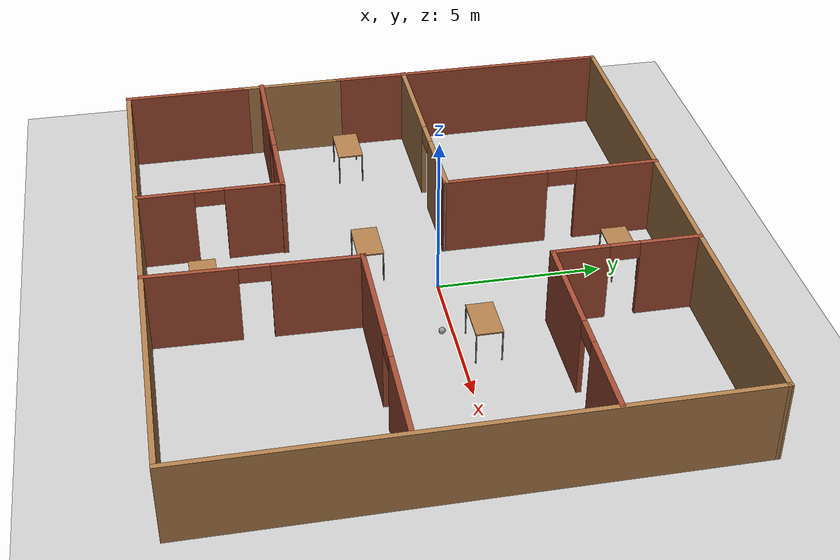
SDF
<sdf version="1.6">
 <world name="default">
  <light name="sun" type="directional">
   <pose>0 0 10 0 -0 0</pose>
   <diffuse>0.8 0.8 0.8 1</diffuse>
   <specular>0.1 0.1 0.1 1</specular>
   <attenuation>
    <range>1000</range>
    <constant>0.9</constant>
    <linear>0.01</linear>
    <quadratic>0.001</quadratic>
   </attenuation>
   <direction>-0.5 0.5 -1</direction>
  </light>
  <model name="ground_plane">
   <static>1</static>
   <link name="link">
    <collision name="collision">
     <geometry><plane><normal>0 0 1</normal><size>100 100</size></plane></geometry>
     <surface><friction><ode><mu>100</mu><mu2>50</mu2></ode></friction></surface>
    </collision>
    <visual name="visual">
     <cast_shadows>0</cast_shadows>
     <geometry><plane><normal>0 0 1</normal><size>100 100</size></plane></geometry>
     <material>
      <script><uri>file://media/materials/scripts/gazebo.material</uri><name>Gazebo/Grey</name></script>
     </material>
    </visual>
   </link>
  </model>
  <gravity>0 0 -9.8</gravity>
  <magnetic_field>6e-06 2.3e-05 -4.2e-05</magnetic_field>
  <atmosphere type="adiabatic"/>
  <physics name="default_physics" default="0" type="ode">
   <max_step_size>0.001</max_step_size>
   <real_time_factor>1</real_time_factor>
   <real_time_update_rate>1000</real_time_update_rate>
  </physics>
  <scene><ambient>0.4 0.4 0.4 1</ambient><background>0.7 0.7 0.7 1</background><shadows>1</shadows></scene>
  <spherical_coordinates>
   <surface_model>EARTH_WGS84</surface_model>
   <latitude_deg>0</latitude_deg>
   <longitude_deg>0</longitude_deg>
   <elevation>0</elevation>
   <heading_deg>0</heading_deg>
  </spherical_coordinates>
  <model name="my_building">
   <pose>0.05994 -0.71489 0 0 -0 0</pose>
   <link name="Wall_1">
    <collision name="Wall_1_Collision">
     <geometry><box><size>3.25 0.15 2.5</size></box></geometry>
     <pose>0 0 1.25 0 -0 0</pose>
    </collision>
    <visual name="Wall_1_Visual">
     <pose>0 0 1.25 0 -0 0</pose>
     <geometry><box><size>3.25 0.15 2.5</size></box></geometry>
     <material>
      <script><uri>file://media/materials/scripts/gazebo.material</uri><name>Gazebo/Wood</name></script>
      <ambient>1 1 1 1</ambient>
     </material>
    </visual>
    <pose>-8.76994 -2.52511 0 0 0 -1.5708</pose>
   </link>
   <link name="Wall_10">
    <pose>-1.91645 4.60169 0 0 -0 1.5708</pose>
    <visual name="Wall_10_Visual_0">
     <pose>-1.75539 0 1.25 0 -0 0</pose>
     <geometry><box><size>3.26293 0.15 2.5</size></box></geometry>
     <material>
      <script><uri>file://media/materials/scripts/gazebo.material</uri><name>Gazebo/Bricks</name></script>
      <ambient>1 1 1 1</ambient>
     </material>
    </visual>
    <collision name="Wall_10_Collision_0">
     <geometry><box><size>3.26293 0.15 2.5</size></box></geometry>
     <pose>-1.75539 0 1.25 0 -0 0</pose>
    </collision>
    <visual name="Wall_10_Visual_1">
     <pose>2.08147 0 1.25 0 -0 0</pose>
     <geometry><box><size>2.61077 0.15 2.5</size></box></geometry>
     <material>
      <script><uri>file://media/materials/scripts/gazebo.material</uri><name>Gazebo/Bricks</name></script>
      <ambient>1 1 1 1</ambient>
     </material>
    </visual>
    <collision name="Wall_10_Collision_1">
     <geometry><box><size>2.61077 0.15 2.5</size></box></geometry>
     <pose>2.08147 0 1.25 0 -0 0</pose>
    </collision>
    <visual name="Wall_10_Visual_2">
     <pose>0.326079 0 2.25 0 -0 0</pose>
     <geometry><box><size>0.9 0.15 0.5</size></box></geometry>
     <material>
      <script><uri>file://media/materials/scripts/gazebo.material</uri><name>Gazebo/Bricks</name></script>
      <ambient>1 1 1 1</ambient>
     </material>
    </visual>
    <collision name="Wall_10_Collision_2">
     <geometry><box><size>0.9 0.15 0.5</size></box></geometry>
     <pose>0.326079 0 2.25 0 -0 0</pose>
    </collision>
   </link>
   <link name="Wall_12">
    <pose>2.18846 5.72608 0 0 0 -1.5708</pose>
    <visual name="Wall_12_Visual_0">
     <pose>-1.31814 0 1.25 0 -0 0</pose>
     <geometry><box><size>1.86373 0.15 2.5</size></box></geometry>
     <material>
      <script><uri>file://media/materials/scripts/gazebo.material</uri><name>Gazebo/Bricks</name></script>
      <ambient>1 1 1 1</ambient>
     </material>
    </visual>
    <collision name="Wall_12_Collision_0">
     <geometry><box><size>1.86373 0.15 2.5</size></box></geometry>
     <pose>-1.31814 0 1.25 0 -0 0</pose>
    </collision>
    <visual name="Wall_12_Visual_1">
     <pose>1.38186 0 1.25 0 -0 0</pose>
     <geometry><box><size>1.73627 0.15 2.5</size></box></geometry>
     <material>
      <script><uri>file://media/materials/scripts/gazebo.material</uri><name>Gazebo/Bricks</name></script>
      <ambient>1 1 1 1</ambient>
     </material>
    </visual>
    <collision name="Wall_12_Collision_1">
     <geometry><box><size>1.73627 0.15 2.5</size></box></geometry>
     <pose>1.38186 0 1.25 0 -0 0</pose>
    </collision>
    <visual name="Wall_12_Visual_2">
     <pose>0.063728 0 2.25 0 -0 0</pose>
     <geometry><box><size>0.9 0.15 0.5</size></box></geometry>
     <material>
      <script><uri>file://media/materials/scripts/gazebo.material</uri><name>Gazebo/Bricks</name></script>
      <ambient>1 1 1 1</ambient>
     </material>
    </visual>
    <collision name="Wall_12_Collision_2">
     <geometry><box><size>0.9 0.15 0.5</size></box></geometry>
     <pose>0.063728 0 2.25 0 -0 0</pose>
    </collision>
   </link>
   <link name="Wall_13">
    <pose>5.48846 3.55108 0 0 -0 0</pose>
    <visual name="Wall_13_Visual_0">
     <pose>-1.74353 0 1.25 0 -0 0</pose>
     <geometry><box><size>3.26293 0.15 2.5</size></box></geometry>
     <material>
      <script><uri>file://media/materials/scripts/gazebo.material</uri><name>Gazebo/Bricks</name></script>
      <ambient>1 1 1 1</ambient>
     </material>
    </visual>
    <collision name="Wall_13_Collision_0">
     <geometry><box><size>3.26293 0.15 2.5</size></box></geometry>
     <pose>-1.74353 0 1.25 0 -0 0</pose>
    </collision>
    <visual name="Wall_13_Visual_1">
     <pose>2.08147 0 1.25 0 -0 0</pose>
     <geometry><box><size>2.58707 0.15 2.5</size></box></geometry>
     <material>
      <script><uri>file://media/materials/scripts/gazebo.material</uri><name>Gazebo/Bricks</name></script>
      <ambient>1 1 1 1</ambient>
     </material>
    </visual>
    <collision name="Wall_13_Collision_1">
     <geometry><box><size>2.58707 0.15 2.5</size></box></geometry>
     <pose>2.08147 0 1.25 0 -0 0</pose>
    </collision>
    <visual name="Wall_13_Visual_2">
     <pose>0.337933 0 2.25 0 -0 0</pose>
     <geometry><box><size>0.9 0.15 0.5</size></box></geometry>
     <material>
      <script><uri>file://media/materials/scripts/gazebo.material</uri><name>Gazebo/Bricks</name></script>
      <ambient>1 1 1 1</ambient>
     </material>
    </visual>
    <collision name="Wall_13_Collision_2">
     <geometry><box><size>0.9 0.15 0.5</size></box></geometry>
     <pose>0.337933 0 2.25 0 -0 0</pose>
    </collision>
   </link>
   <link name="Wall_15">
    <pose>-5.78798 -3.53742 0 0 -0 0</pose>
    <visual name="Wall_15_Visual_0">
     <pose>-1.62574 0 1.25 0 -0 0</pose>
     <geometry><box><size>2.98309 0.15 2.5</size></box></geometry>
     <material>
      <script><uri>file://media/materials/scripts/gazebo.material</uri><name>Gazebo/Bricks</name></script>
      <ambient>1 1 1 1</ambient>
     </material>
    </visual>
    <collision name="Wall_15_Collision_0">
     <geometry><box><size>2.98309 0.15 2.5</size></box></geometry>
     <pose>-1.62574 0 1.25 0 -0 0</pose>
    </collision>
    <visual name="Wall_15_Visual_1">
     <pose>1.94155 0 1.25 0 -0 0</pose>
     <geometry><box><size>2.35149 0.15 2.5</size></box></geometry>
     <material>
      <script><uri>file://media/materials/scripts/gazebo.material</uri><name>Gazebo/Bricks</name></script>
      <ambient>1 1 1 1</ambient>
     </material>
    </visual>
    <collision name="Wall_15_Collision_1">
     <geometry><box><size>2.35149 0.15 2.5</size></box></geometry>
     <pose>1.94155 0 1.25 0 -0 0</pose>
    </collision>
    <visual name="Wall_15_Visual_2">
     <pose>0.315801 0 2.25 0 -0 0</pose>
     <geometry><box><size>0.9 0.15 0.5</size></box></geometry>
     <material>
      <script><uri>file://media/materials/scripts/gazebo.material</uri><name>Gazebo/Bricks</name></script>
      <ambient>1 1 1 1</ambient>
     </material>
    </visual>
    <collision name="Wall_15_Collision_2">
     <geometry><box><size>0.9 0.15 0.5</size></box></geometry>
     <pose>0.315801 0 2.25 0 -0 0</pose>
    </collision>
   </link>
   <link name="Wall_16">
    <pose>-2.78067 -5.71242 0 0 0 -1.5708</pose>
    <visual name="Wall_16_Visual_0">
     <pose>-1.33563 0 1.25 0 -0 0</pose>
     <geometry><box><size>1.82875 0.15 2.5</size></box></geometry>
     <material>
      <script><uri>file://media/materials/scripts/gazebo.material</uri><name>Gazebo/Bricks</name></script>
      <ambient>1 1 1 1</ambient>
     </material>
    </visual>
    <collision name="Wall_16_Collision_0">
     <geometry><box><size>1.82875 0.15 2.5</size></box></geometry>
     <pose>-1.33563 0 1.25 0 -0 0</pose>
    </collision>
    <visual name="Wall_16_Visual_1">
     <pose>1.36437 0 1.25 0 -0 0</pose>
     <geometry><box><size>1.77125 0.15 2.5</size></box></geometry>
     <material>
      <script><uri>file://media/materials/scripts/gazebo.material</uri><name>Gazebo/Bricks</name></script>
      <ambient>1 1 1 1</ambient>
     </material>
    </visual>
    <collision name="Wall_16_Collision_1">
     <geometry><box><size>1.77125 0.15 2.5</size></box></geometry>
     <pose>1.36437 0 1.25 0 -0 0</pose>
    </collision>
    <visual name="Wall_16_Visual_2">
     <pose>0.028748 0 2.25 0 -0 0</pose>
     <geometry><box><size>0.9 0.15 0.5</size></box></geometry>
     <material>
      <script><uri>file://media/materials/scripts/gazebo.material</uri><name>Gazebo/Bricks</name></script>
      <ambient>1 1 1 1</ambient>
     </material>
    </visual>
    <collision name="Wall_16_Collision_2">
     <geometry><box><size>0.9 0.15 0.5</size></box></geometry>
     <pose>0.028748 0 2.25 0 -0 0</pose>
    </collision>
   </link>
   <link name="Wall_18">
    <pose>1.31396 -4.82289 0 0 -0 1.54814</pose>
    <visual name="Wall_18_Visual_0">
     <pose>-1.79453 0 1.25 0 -0 0</pose>
     <geometry><box><size>2.73664 0.15 2.5</size></box></geometry>
     <material>
      <script><uri>file://media/materials/scripts/gazebo.material</uri><name>Gazebo/Bricks</name></script>
      <ambient>1 1 1 1</ambient>
     </material>
    </visual>
    <collision name="Wall_18_Collision_0">
     <geometry><box><size>2.73664 0.15 2.5</size></box></geometry>
     <pose>-1.79453 0 1.25 0 -0 0</pose>
    </collision>
    <visual name="Wall_18_Visual_1">
     <pose>1.81832 0 1.25 0 -0 0</pose>
     <geometry><box><size>2.68905 0.15 2.5</size></box></geometry>
     <material>
      <script><uri>file://media/materials/scripts/gazebo.material</uri><name>Gazebo/Bricks</name></script>
      <ambient>1 1 1 1</ambient>
     </material>
    </visual>
    <collision name="Wall_18_Collision_1">
     <geometry><box><size>2.68905 0.15 2.5</size></box></geometry>
     <pose>1.81832 0 1.25 0 -0 0</pose>
    </collision>
    <visual name="Wall_18_Visual_2">
     <pose>0.023794 0 2.25 0 -0 0</pose>
     <geometry><box><size>0.9 0.15 0.5</size></box></geometry>
     <material>
      <script><uri>file://media/materials/scripts/gazebo.material</uri><name>Gazebo/Bricks</name></script>
      <ambient>1 1 1 1</ambient>
     </material>
    </visual>
    <collision name="Wall_18_Collision_2">
     <geometry><box><size>0.9 0.15 0.5</size></box></geometry>
     <pose>0.023794 0 2.25 0 -0 0</pose>
    </collision>
   </link>
   <link name="Wall_19">
    <pose>5.08619 -1.73583 0 0 -0 0</pose>
    <visual name="Wall_19_Visual_0">
     <pose>-1.95341 0 1.25 0 -0 0</pose>
     <geometry><box><size>3.71767 0.15 2.5</size></box></geometry>
     <material>
      <script><uri>file://media/materials/scripts/gazebo.material</uri><name>Gazebo/Bricks</name></script>
      <ambient>1 1 1 1</ambient>
     </material>
    </visual>
    <collision name="Wall_19_Collision_0">
     <geometry><box><size>3.71767 0.15 2.5</size></box></geometry>
     <pose>-1.95341 0 1.25 0 -0 0</pose>
    </collision>
    <visual name="Wall_19_Visual_1">
     <pose>2.30884 0 1.25 0 -0 0</pose>
     <geometry><box><size>3.00683 0.15 2.5</size></box></geometry>
     <material>
      <script><uri>file://media/materials/scripts/gazebo.material</uri><name>Gazebo/Bricks</name></script>
      <ambient>1 1 1 1</ambient>
     </material>
    </visual>
    <collision name="Wall_19_Collision_1">
     <geometry><box><size>3.00683 0.15 2.5</size></box></geometry>
     <pose>2.30884 0 1.25 0 -0 0</pose>
    </collision>
    <visual name="Wall_19_Visual_2">
     <pose>0.355423 0 2.25 0 -0 0</pose>
     <geometry><box><size>0.9 0.15 0.5</size></box></geometry>
     <material>
      <script><uri>file://media/materials/scripts/gazebo.material</uri><name>Gazebo/Bricks</name></script>
      <ambient>1 1 1 1</ambient>
     </material>
    </visual>
    <collision name="Wall_19_Collision_2">
     <geometry><box><size>0.9 0.15 0.5</size></box></geometry>
     <pose>0.355423 0 2.25 0 -0 0</pose>
    </collision>
   </link>
   <link name="Wall_3">
    <collision name="Wall_3_Collision">
     <geometry><box><size>4 0.15 2.5</size></box></geometry>
     <pose>0 0 1.25 0 -0 0</pose>
    </collision>
    <visual name="Wall_3_Visual">
     <pose>0 0 1.25 0 -0 0</pose>
     <geometry><box><size>4 0.15 2.5</size></box></geometry>
     <material>
      <script><uri>file://media/materials/scripts/gazebo.material</uri><name>Gazebo/Bricks</name></script>
      <ambient>1 1 1 1</ambient>
     </material>
    </visual>
    <pose>-8.76994 -6.00011 0 0 0 -1.5708</pose>
   </link>
   <link name="Wall_4">
    <collision name="Wall_4_Collision">
     <geometry><box><size>17.75 0.15 2.5</size></box></geometry>
     <pose>0 0 1.25 0 -0 0</pose>
    </collision>
    <visual name="Wall_4_Visual">
     <pose>0 0 1.25 0 -0 0</pose>
     <geometry><box><size>17.75 0.15 2.5</size></box></geometry>
     <material>
      <script><uri>file://media/materials/scripts/gazebo.material</uri><name>Gazebo/Wood</name></script>
      <ambient>1 1 1 1</ambient>
     </material>
    </visual>
    <pose>0.030064 -7.92511 0 0 -0 0</pose>
   </link>
   <link name="Wall_5">
    <collision name="Wall_5_Collision">
     <geometry><box><size>16 0.15 2.5</size></box></geometry>
     <pose>0 0 1.25 0 -0 0</pose>
    </collision>
    <visual name="Wall_5_Visual">
     <pose>0 0 1.25 0 -0 0</pose>
     <geometry><box><size>16 0.15 2.5</size></box></geometry>
     <material>
      <script><uri>file://media/materials/scripts/gazebo.material</uri><name>Gazebo/Wood</name></script>
      <ambient>1 1 1 1</ambient>
     </material>
    </visual>
    <pose>8.83006 -0.000106 0 0 -0 1.5708</pose>
   </link>
   <link name="Wall_6">
    <collision name="Wall_6_Collision">
     <geometry><box><size>17.7501 0.15 2.5</size></box></geometry>
     <pose>0 0 1.25 0 -0 0</pose>
    </collision>
    <visual name="Wall_6_Visual">
     <pose>0 0 1.25 0 -0 0</pose>
     <geometry><box><size>17.7501 0.15 2.5</size></box></geometry>
     <material>
      <script><uri>file://media/materials/scripts/gazebo.material</uri><name>Gazebo/Wood</name></script>
      <ambient>1 1 1 1</ambient>
     </material>
    </visual>
    <pose>0.030064 7.89989 0 0 0 -3.13875</pose>
   </link>
   <link name="Wall_7">
    <collision name="Wall_7_Collision">
     <geometry><box><size>9 0.15 2.5</size></box></geometry>
     <pose>0 0 1.25 0 -0 0</pose>
    </collision>
    <visual name="Wall_7_Visual">
     <pose>0 0 1.25 0 -0 0</pose>
     <geometry><box><size>9 0.15 2.5</size></box></geometry>
     <material>
      <script><uri>file://media/materials/scripts/gazebo.material</uri><name>Gazebo/Bricks</name></script>
      <ambient>1 1 1 1</ambient>
     </material>
    </visual>
    <pose>-8.76994 3.44989 0 0 0 -1.5708</pose>
   </link>
   <link name="Wall_9">
    <pose>-5.35587 1.28984 0 0 -0 0.01017</pose>
    <visual name="Wall_9_Visual_0">
     <pose>-1.69114 0 1.25 0 -0 0</pose>
     <geometry><box><size>3.64666 0.15 2.5</size></box></geometry>
     <material>
      <script><uri>file://media/materials/scripts/gazebo.material</uri><name>Gazebo/Wood</name></script>
      <ambient>1 1 1 1</ambient>
     </material>
    </visual>
    <collision name="Wall_9_Collision_0">
     <geometry><box><size>3.64666 0.15 2.5</size></box></geometry>
     <pose>-1.69114 0 1.25 0 -0 0</pose>
    </collision>
    <visual name="Wall_9_Visual_1">
     <pose>2.27333 0 1.25 0 -0 0</pose>
     <geometry><box><size>2.48228 0.15 2.5</size></box></geometry>
     <material>
      <script><uri>file://media/materials/scripts/gazebo.material</uri><name>Gazebo/Wood</name></script>
      <ambient>1 1 1 1</ambient>
     </material>
    </visual>
    <collision name="Wall_9_Collision_1">
     <geometry><box><size>2.48228 0.15 2.5</size></box></geometry>
     <pose>2.27333 0 1.25 0 -0 0</pose>
    </collision>
    <visual name="Wall_9_Visual_2">
     <pose>0.582193 0 2.25 0 -0 0</pose>
     <geometry><box><size>0.9 0.15 0.5</size></box></geometry>
     <material>
      <script><uri>file://media/materials/scripts/gazebo.material</uri><name>Gazebo/Wood</name></script>
      <ambient>1 1 1 1</ambient>
     </material>
    </visual>
    <collision name="Wall_9_Collision_2">
     <geometry><box><size>0.9 0.15 0.5</size></box></geometry>
     <pose>0.582193 0 2.25 0 -0 0</pose>
    </collision>
   </link>
   <static>1</static>
  </model>
  <model name="table">
   <static>0</static>
   <link name="link">
    <collision name="surface">
     <pose>0 0 1 0 -0 0</pose>
     <geometry><box><size>1.5 0.8 0.03</size></box></geometry>
     <surface><friction><ode><mu>0.6</mu><mu2>0.6</mu2></ode></friction></surface>
    </collision>
    <visual name="visual1">
     <pose>0 0 1 0 -0 0</pose>
     <geometry><box><size>1.4 0.8 0.04</size></box></geometry>
     <material>
      <script><uri>file://media/materials/scripts/gazebo.material</uri><name>Gazebo/Wood</name></script>
     </material>
    </visual>
    <collision name="front_left_leg">
     <pose>0.68 0.38 0.5 0 -0 0</pose>
     <geometry><cylinder><radius>0.02</radius><length>1</length></cylinder></geometry>
    </collision>
    <visual name="front_left_leg">
     <pose>0.68 0.38 0.5 0 -0 0</pose>
     <geometry><cylinder><radius>0.02</radius><length>1</length></cylinder></geometry>
     <material>
      <script><uri>file://media/materials/scripts/gazebo.material</uri><name>Gazebo/Grey</name></script>
     </material>
    </visual>
    <collision name="front_right_leg">
     <pose>0.68 -0.38 0.5 0 -0 0</pose>
     <geometry><cylinder><radius>0.02</radius><length>1</length></cylinder></geometry>
    </collision>
    <visual name="front_right_leg">
     <pose>0.68 -0.38 0.5 0 -0 0</pose>
     <geometry><cylinder><radius>0.02</radius><length>1</length></cylinder></geometry>
     <material>
      <script><uri>file://media/materials/scripts/gazebo.material</uri><name>Gazebo/Grey</name></script>
     </material>
    </visual>
    <collision name="back_right_leg">
     <pose>-0.68 -0.38 0.5 0 -0 0</pose>
     <geometry><cylinder><radius>0.02</radius><length>1</length></cylinder></geometry>
    </collision>
    <visual name="back_right_leg">
     <pose>-0.68 -0.38 0.5 0 -0 0</pose>
     <geometry><cylinder><radius>0.02</radius><length>1</length></cylinder></geometry>
     <material>
      <script><uri>file://media/materials/scripts/gazebo.material</uri><name>Gazebo/Grey</name></script>
     </material>
    </visual>
    <collision name="back_left_leg">
     <pose>-0.68 0.38 0.5 0 -0 0</pose>
     <geometry><cylinder><radius>0.02</radius><length>1</length></cylinder></geometry>
    </collision>
    <visual name="back_left_leg">
     <pose>-0.68 0.38 0.5 0 -0 0</pose>
     <geometry><cylinder><radius>0.02</radius><length>1</length></cylinder></geometry>
     <material>
      <script><uri>file://media/materials/scripts/gazebo.material</uri><name>Gazebo/Grey</name></script>
     </material>
    </visual>
    <inertial>
     <inertia><ixx>1</ixx><ixy>0</ixy><ixz>0</ixz><iyy>1</iyy><iyz>0</iyz><izz>1</izz></inertia>
     <mass>1</mass>
    </inertial>
   </link>
   <pose>3.00509 0.723212 -9e-06 -1e-06 0 0</pose>
  </model>
  <model name="table_0">
   <static>0</static>
   <link name="link">
    <collision name="surface">
     <pose>0 0 1 0 -0 0</pose>
     <geometry><box><size>1.5 0.8 0.03</size></box></geometry>
     <surface><friction><ode><mu>0.6</mu><mu2>0.6</mu2></ode></friction></surface>
    </collision>
    <visual name="visual1">
     <pose>0 0 1 0 -0 0</pose>
     <geometry><box><size>1.4 0.8 0.04</size></box></geometry>
     <material>
      <script><uri>file://media/materials/scripts/gazebo.material</uri><name>Gazebo/Wood</name></script>
     </material>
    </visual>
    <collision name="front_left_leg">
     <pose>0.68 0.38 0.5 0 -0 0</pose>
     <geometry><cylinder><radius>0.02</radius><length>1</length></cylinder></geometry>
    </collision>
    <visual name="front_left_leg">
     <pose>0.68 0.38 0.5 0 -0 0</pose>
     <geometry><cylinder><radius>0.02</radius><length>1</length></cylinder></geometry>
     <material>
      <script><uri>file://media/materials/scripts/gazebo.material</uri><name>Gazebo/Grey</name></script>
     </material>
    </visual>
    <collision name="front_right_leg">
     <pose>0.68 -0.38 0.5 0 -0 0</pose>
     <geometry><cylinder><radius>0.02</radius><length>1</length></cylinder></geometry>
    </collision>
    <visual name="front_right_leg">
     <pose>0.68 -0.38 0.5 0 -0 0</pose>
     <geometry><cylinder><radius>0.02</radius><length>1</length></cylinder></geometry>
     <material>
      <script><uri>file://media/materials/scripts/gazebo.material</uri><name>Gazebo/Grey</name></script>
     </material>
    </visual>
    <collision name="back_right_leg">
     <pose>-0.68 -0.38 0.5 0 -0 0</pose>
     <geometry><cylinder><radius>0.02</radius><length>1</length></cylinder></geometry>
    </collision>
    <visual name="back_right_leg">
     <pose>-0.68 -0.38 0.5 0 -0 0</pose>
     <geometry><cylinder><radius>0.02</radius><length>1</length></cylinder></geometry>
     <material>
      <script><uri>file://media/materials/scripts/gazebo.material</uri><name>Gazebo/Grey</name></script>
     </material>
    </visual>
    <collision name="back_left_leg">
     <pose>-0.68 0.38 0.5 0 -0 0</pose>
     <geometry><cylinder><radius>0.02</radius><length>1</length></cylinder></geometry>
    </collision>
    <visual name="back_left_leg">
     <pose>-0.68 0.38 0.5 0 -0 0</pose>
     <geometry><cylinder><radius>0.02</radius><length>1</length></cylinder></geometry>
     <material>
      <script><uri>file://media/materials/scripts/gazebo.material</uri><name>Gazebo/Grey</name></script>
     </material>
    </visual>
    <inertial>
     <inertia><ixx>1</ixx><ixy>0</ixy><ixz>0</ixz><iyy>1</iyy><iyz>0</iyz><izz>1</izz></inertia>
     <mass>1</mass>
    </inertial>
   </link>
   <pose>-6.91033 -1.67494 -2e-06 0 -0 0</pose>
  </model>
  <model name="table_1">
   <static>0</static>
   <link name="link">
    <collision name="surface">
     <pose>0 0 1 0 -0 0</pose>
     <geometry><box><size>1.5 0.8 0.03</size></box></geometry>
     <surface><friction><ode><mu>0.6</mu><mu2>0.6</mu2></ode></friction></surface>
    </collision>
    <visual name="visual1">
     <pose>0 0 1 0 -0 0</pose>
     <geometry><box><size>1.4 0.8 0.04</size></box></geometry>
     <material>
      <script><uri>file://media/materials/scripts/gazebo.material</uri><name>Gazebo/Wood</name></script>
     </material>
    </visual>
    <collision name="front_left_leg">
     <pose>0.68 0.38 0.5 0 -0 0</pose>
     <geometry><cylinder><radius>0.02</radius><length>1</length></cylinder></geometry>
    </collision>
    <visual name="front_left_leg">
     <pose>0.68 0.38 0.5 0 -0 0</pose>
     <geometry><cylinder><radius>0.02</radius><length>1</length></cylinder></geometry>
     <material>
      <script><uri>file://media/materials/scripts/gazebo.material</uri><name>Gazebo/Grey</name></script>
     </material>
    </visual>
    <collision name="front_right_leg">
     <pose>0.68 -0.38 0.5 0 -0 0</pose>
     <geometry><cylinder><radius>0.02</radius><length>1</length></cylinder></geometry>
    </collision>
    <visual name="front_right_leg">
     <pose>0.68 -0.38 0.5 0 -0 0</pose>
     <geometry><cylinder><radius>0.02</radius><length>1</length></cylinder></geometry>
     <material>
      <script><uri>file://media/materials/scripts/gazebo.material</uri><name>Gazebo/Grey</name></script>
     </material>
    </visual>
    <collision name="back_right_leg">
     <pose>-0.68 -0.38 0.5 0 -0 0</pose>
     <geometry><cylinder><radius>0.02</radius><length>1</length></cylinder></geometry>
    </collision>
    <visual name="back_right_leg">
     <pose>-0.68 -0.38 0.5 0 -0 0</pose>
     <geometry><cylinder><radius>0.02</radius><length>1</length></cylinder></geometry>
     <material>
      <script><uri>file://media/materials/scripts/gazebo.material</uri><name>Gazebo/Grey</name></script>
     </material>
    </visual>
    <collision name="back_left_leg">
     <pose>-0.68 0.38 0.5 0 -0 0</pose>
     <geometry><cylinder><radius>0.02</radius><length>1</length></cylinder></geometry>
    </collision>
    <visual name="back_left_leg">
     <pose>-0.68 0.38 0.5 0 -0 0</pose>
     <geometry><cylinder><radius>0.02</radius><length>1</length></cylinder></geometry>
     <material>
      <script><uri>file://media/materials/scripts/gazebo.material</uri><name>Gazebo/Grey</name></script>
     </material>
    </visual>
    <inertial>
     <inertia><ixx>1</ixx><ixy>0</ixy><ixz>0</ixz><iyy>1</iyy><iyz>0</iyz><izz>1</izz></inertia>
     <mass>1</mass>
    </inertial>
   </link>
   <pose>0.05125 5.57729 -1e-06 0 1e-06 0</pose>
  </model>
  <model name="table_2">
   <static>0</static>
   <link name="link">
    <collision name="surface">
     <pose>0 0 1 0 -0 0</pose>
     <geometry><box><size>1.5 0.8 0.03</size></box></geometry>
     <surface><friction><ode><mu>0.6</mu><mu2>0.6</mu2></ode></friction></surface>
    </collision>
    <visual name="visual1">
     <pose>0 0 1 0 -0 0</pose>
     <geometry><box><size>1.4 0.8 0.04</size></box></geometry>
     <material>
      <script><uri>file://media/materials/scripts/gazebo.material</uri><name>Gazebo/Wood</name></script>
     </material>
    </visual>
    <collision name="front_left_leg">
     <pose>0.68 0.38 0.5 0 -0 0</pose>
     <geometry><cylinder><radius>0.02</radius><length>1</length></cylinder></geometry>
    </collision>
    <visual name="front_left_leg">
     <pose>0.68 0.38 0.5 0 -0 0</pose>
     <geometry><cylinder><radius>0.02</radius><length>1</length></cylinder></geometry>
     <material>
      <script><uri>file://media/materials/scripts/gazebo.material</uri><name>Gazebo/Grey</name></script>
     </material>
    </visual>
    <collision name="front_right_leg">
     <pose>0.68 -0.38 0.5 0 -0 0</pose>
     <geometry><cylinder><radius>0.02</radius><length>1</length></cylinder></geometry>
    </collision>
    <visual name="front_right_leg">
     <pose>0.68 -0.38 0.5 0 -0 0</pose>
     <geometry><cylinder><radius>0.02</radius><length>1</length></cylinder></geometry>
     <material>
      <script><uri>file://media/materials/scripts/gazebo.material</uri><name>Gazebo/Grey</name></script>
     </material>
    </visual>
    <collision name="back_right_leg">
     <pose>-0.68 -0.38 0.5 0 -0 0</pose>
     <geometry><cylinder><radius>0.02</radius><length>1</length></cylinder></geometry>
    </collision>
    <visual name="back_right_leg">
     <pose>-0.68 -0.38 0.5 0 -0 0</pose>
     <geometry><cylinder><radius>0.02</radius><length>1</length></cylinder></geometry>
     <material>
      <script><uri>file://media/materials/scripts/gazebo.material</uri><name>Gazebo/Grey</name></script>
     </material>
    </visual>
    <collision name="back_left_leg">
     <pose>-0.68 0.38 0.5 0 -0 0</pose>
     <geometry><cylinder><radius>0.02</radius><length>1</length></cylinder></geometry>
    </collision>
    <visual name="back_left_leg">
     <pose>-0.68 0.38 0.5 0 -0 0</pose>
     <geometry><cylinder><radius>0.02</radius><length>1</length></cylinder></geometry>
     <material>
      <script><uri>file://media/materials/scripts/gazebo.material</uri><name>Gazebo/Grey</name></script>
     </material>
    </visual>
    <inertial>
     <inertia><ixx>1</ixx><ixy>0</ixy><ixz>0</ixz><iyy>1</iyy><iyz>0</iyz><izz>1</izz></inertia>
     <mass>1</mass>
    </inertial>
   </link>
   <pose>-0.568647 -6.89736 -1e-06 0 1e-06 0</pose>
  </model>
  <model name="table_3">
   <static>0</static>
   <link name="link">
    <collision name="surface">
     <pose>0 0 1 0 -0 0</pose>
     <geometry><box><size>1.5 0.8 0.03</size></box></geometry>
     <surface><friction><ode><mu>0.6</mu><mu2>0.6</mu2></ode></friction></surface>
    </collision>
    <visual name="visual1">
     <pose>0 0 1 0 -0 0</pose>
     <geometry><box><size>1.4 0.8 0.04</size></box></geometry>
     <material>
      <script><uri>file://media/materials/scripts/gazebo.material</uri><name>Gazebo/Wood</name></script>
     </material>
    </visual>
    <collision name="front_left_leg">
     <pose>0.68 0.38 0.5 0 -0 0</pose>
     <geometry><cylinder><radius>0.02</radius><length>1</length></cylinder></geometry>
    </collision>
    <visual name="front_left_leg">
     <pose>0.68 0.38 0.5 0 -0 0</pose>
     <geometry><cylinder><radius>0.02</radius><length>1</length></cylinder></geometry>
     <material>
      <script><uri>file://media/materials/scripts/gazebo.material</uri><name>Gazebo/Grey</name></script>
     </material>
    </visual>
    <collision name="front_right_leg">
     <pose>0.68 -0.38 0.5 0 -0 0</pose>
     <geometry><cylinder><radius>0.02</radius><length>1</length></cylinder></geometry>
    </collision>
    <visual name="front_right_leg">
     <pose>0.68 -0.38 0.5 0 -0 0</pose>
     <geometry><cylinder><radius>0.02</radius><length>1</length></cylinder></geometry>
     <material>
      <script><uri>file://media/materials/scripts/gazebo.material</uri><name>Gazebo/Grey</name></script>
     </material>
    </visual>
    <collision name="back_right_leg">
     <pose>-0.68 -0.38 0.5 0 -0 0</pose>
     <geometry><cylinder><radius>0.02</radius><length>1</length></cylinder></geometry>
    </collision>
    <visual name="back_right_leg">
     <pose>-0.68 -0.38 0.5 0 -0 0</pose>
     <geometry><cylinder><radius>0.02</radius><length>1</length></cylinder></geometry>
     <material>
      <script><uri>file://media/materials/scripts/gazebo.material</uri><name>Gazebo/Grey</name></script>
     </material>
    </visual>
    <collision name="back_left_leg">
     <pose>-0.68 0.38 0.5 0 -0 0</pose>
     <geometry><cylinder><radius>0.02</radius><length>1</length></cylinder></geometry>
    </collision>
    <visual name="back_left_leg">
     <pose>-0.68 0.38 0.5 0 -0 0</pose>
     <geometry><cylinder><radius>0.02</radius><length>1</length></cylinder></geometry>
     <material>
      <script><uri>file://media/materials/scripts/gazebo.material</uri><name>Gazebo/Grey</name></script>
     </material>
    </visual>
    <inertial>
     <inertia><ixx>1</ixx><ixy>0</ixy><ixz>0</ixz><iyy>1</iyy><iyz>0</iyz><izz>1</izz></inertia>
     <mass>1</mass>
    </inertial>
   </link>
   <pose>-1.3204 -1.92083 -1e-06 0 1e-06 0</pose>
  </model>
  <model name="my_ball">
   <link name="link_0">
    <inertial>
     <mass>0.98078</mass>
     <inertia>
      <ixx>0.0968172</ixx>
      <ixy>0</ixy>
      <ixz>0</ixz>
      <iyy>0.0968172</iyy>
      <iyz>0</iyz>
      <izz>0.0968172</izz>
     </inertia>
    </inertial>
    <visual name="visual">
     <geometry><sphere><radius>0.1</radius></sphere></geometry>
     <material>
      <lighting>1</lighting>
      <script><uri>file://media/materials/scripts/gazebo.material</uri><name>Gazebo/Grey</name></script>
      <ambient>1 1 1 1</ambient>
      <diffuse>1 1 1 1</diffuse>
      <specular>1 1 1 1</specular>
      <emissive>1 1 1 1</emissive>
      <shader type="vertex"><normal_map>__default__</normal_map></shader>
     </material>
    </visual>
    <collision name="collision">
     <geometry><sphere><radius>0.1</radius></sphere></geometry>
     <surface>
      <friction>
       <ode><mu>1</mu><mu2>1</mu2><fdir1>0 0 0</fdir1><slip1>0</slip1><slip2>0</slip2></ode>
       <torsional>
        <coefficient>1</coefficient>
        <patch_radius>0</patch_radius>
        <surface_radius>0</surface_radius>
        <use_patch_radius>1</use_patch_radius>
        <ode><slip>0</slip></ode>
       </torsional>
      </friction>
      <bounce><restitution_coefficient>0</restitution_coefficient><threshold>1e+06</threshold></bounce>
      <contact>
       <collide_without_contact>0</collide_without_contact>
       <collide_without_contact_bitmask>1</collide_without_contact_bitmask>
       <collide_bitmask>1</collide_bitmask>
       <ode>
        <soft_cfm>0</soft_cfm>
        <soft_erp>0.2</soft_erp>
        <kp>1e+13</kp>
        <kd>1</kd>
        <max_vel>0.01</max_vel>
        <min_depth>0</min_depth>
       </ode>
       <bullet>
        <split_impulse>1</split_impulse>
        <split_impulse_penetration_threshold>-0.01</split_impulse_penetration_threshold>
        <soft_cfm>0</soft_cfm>
        <soft_erp>0.2</soft_erp>
        <kp>1e+13</kp>
        <kd>1</kd>
       </bullet>
      </contact>
     </surface>
    </collision>
   </link>
   <static>0</static>
   <pose>2.20348 -0.320105 0.1 0 -0 0</pose>
  </model>
 </world>
</sdf>
